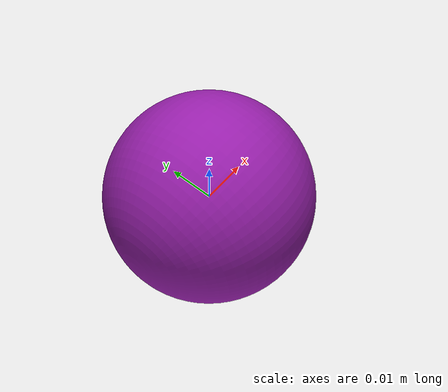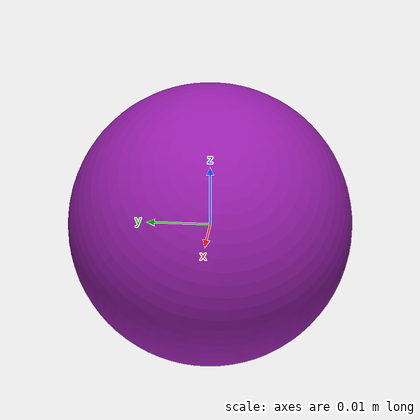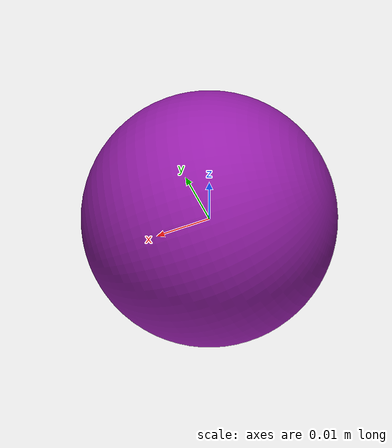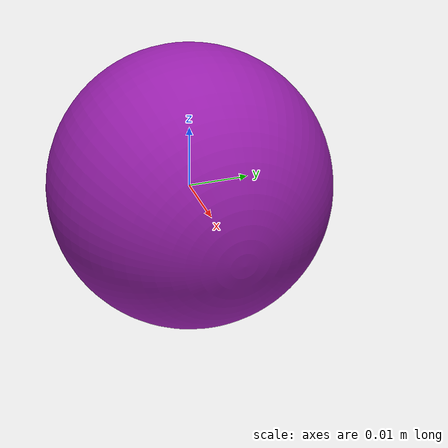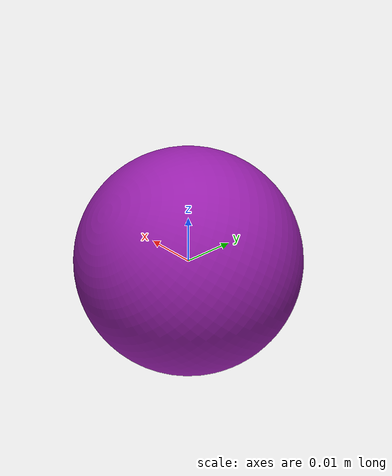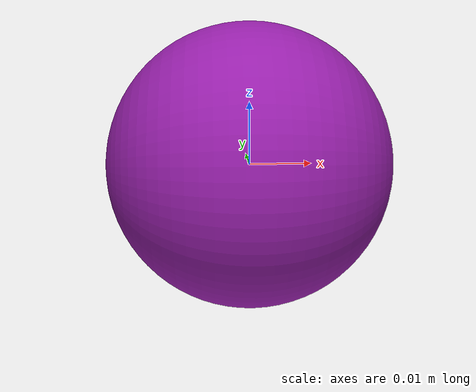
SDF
<sdf version="1.6">
<model name="ball">
<link name="part_1">
<frame name="part_1_frame">
<pose>0 0 0 0 -0 0</pose>
</frame>
<visual name="part_1_0_part_1_visual">
<pose>0 0 0 0 0 0</pose>
<geometry>
<mesh><uri>model://ball/part_1.stl</uri></mesh>
</geometry>
<material><ambient>0.59607843137254901134 0.12156862745098039047 0.6745098039215686736 1</ambient><diffuse>0.59607843137254901134 0.12156862745098039047 0.6745098039215686736 1</diffuse><specular>0.1 0.1 0.1 1</specular><emissive>0 0 0 0</emissive></material>
</visual>
<collision name="part_1_0_part_1_visual">
<pose>-0.00017887639114633202553 -5.1169543439755216241e-05 7.8157179814297705889e-05 0 -0 0</pose>
<geometry>
<mesh><uri>model://ball/part_1.stl</uri></mesh>
</geometry>
<surface>
<friction>
<ode>
<mu>0.01</mu>
<mu2>0.01</mu2>
</ode>
</friction>
</surface>
</collision>
<inertial>
<pose frame="part_1_frame">-0.00017887639114633202553 -5.1169543439755216241e-05 7.8157179814298559698e-05 0 0 0</pose>
<mass>0.2</mass>
<inertia><ixx>2.3417906641751647426e-05</ixx><ixy>0</ixy><ixz>0</ixz><iyy>2.3417906641751647426e-05</iyy><iyz>0</iyz><izz>2.3417906641751647426e-05</izz></inertia>
</inertial>
</link>

</model>
</sdf>
